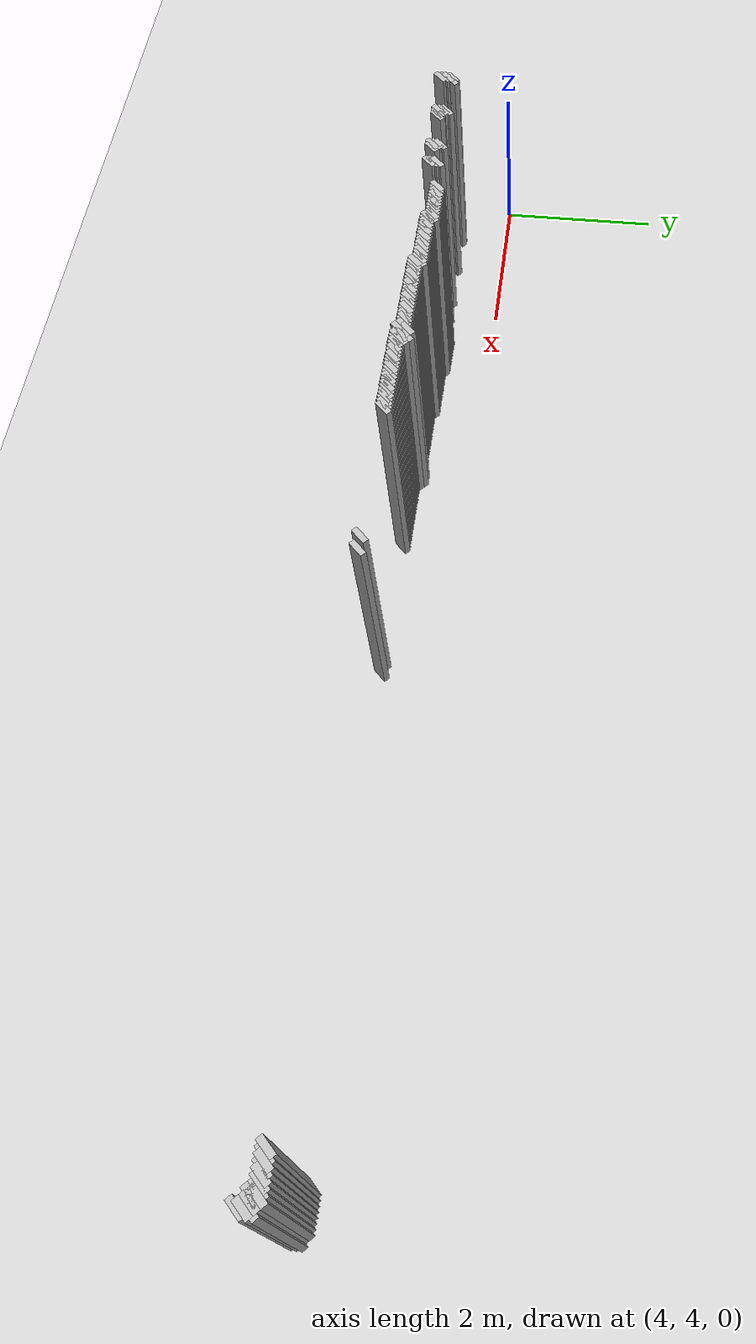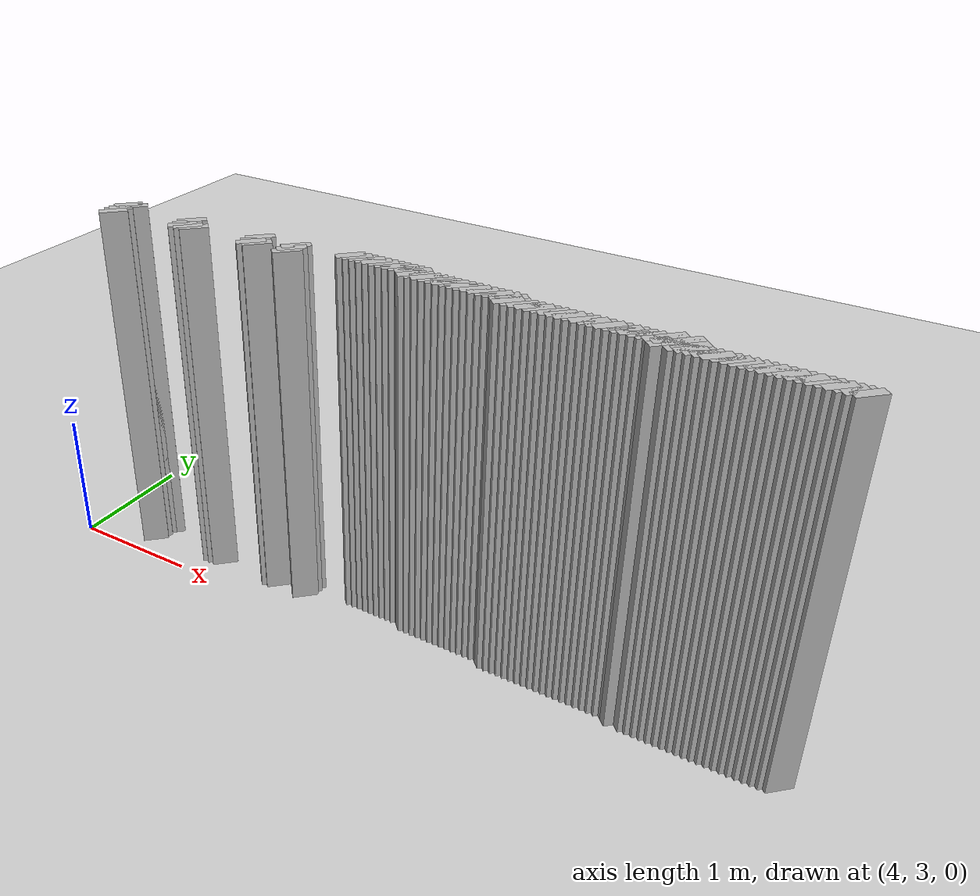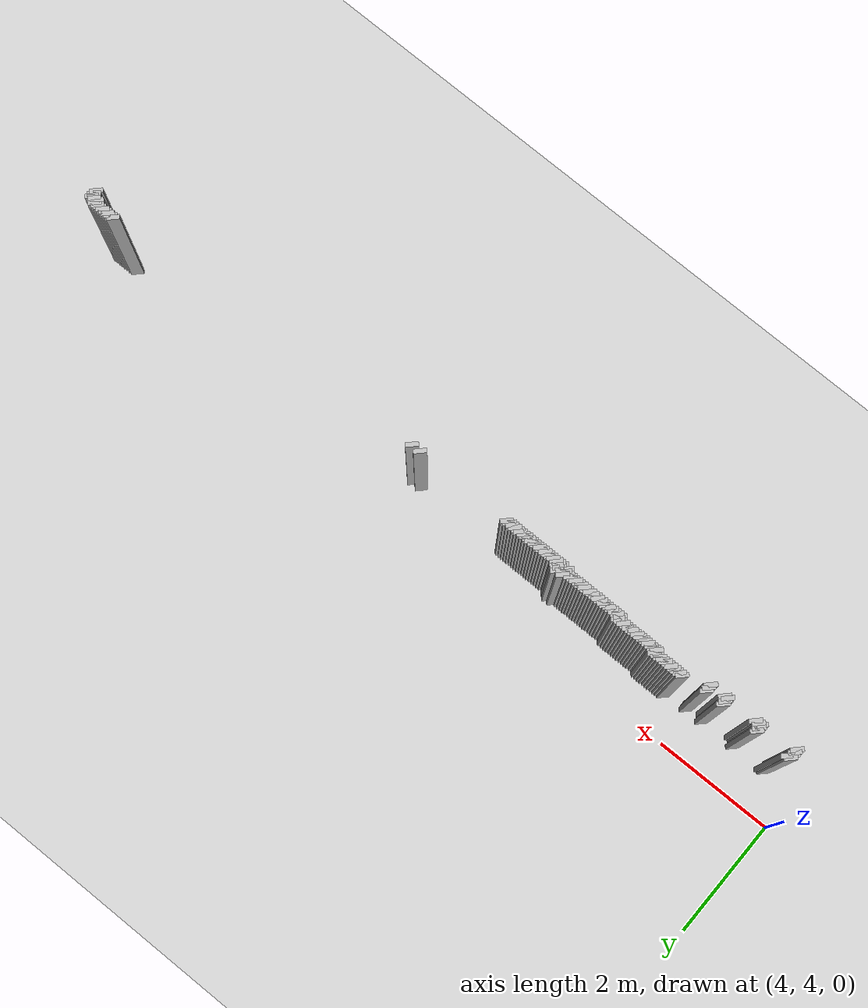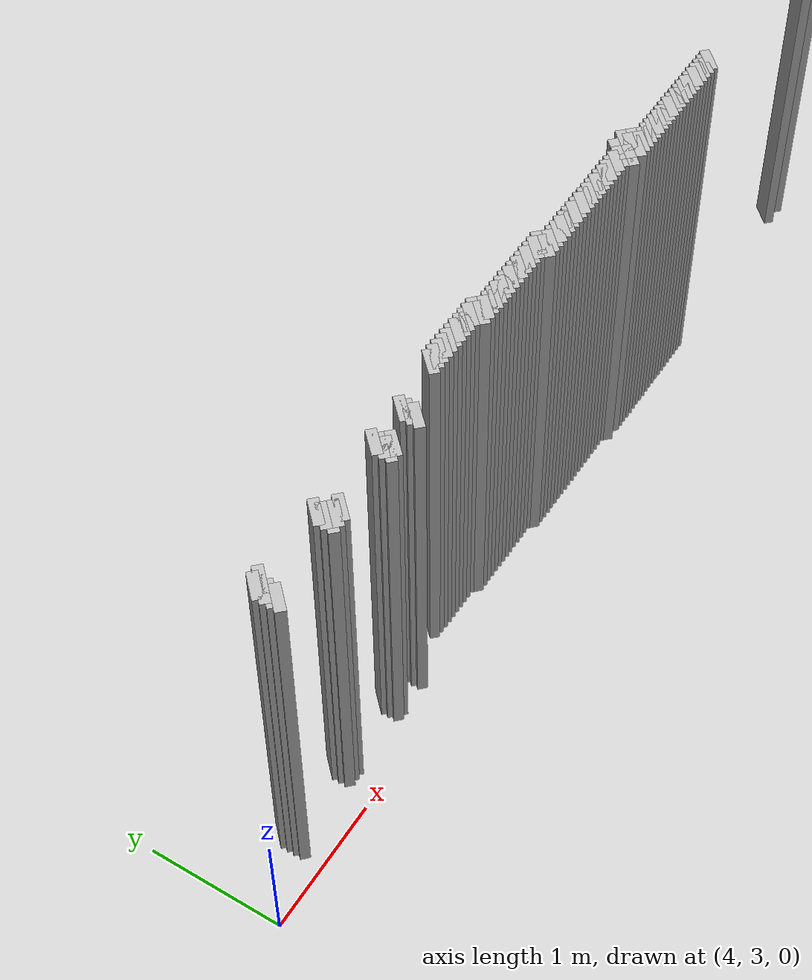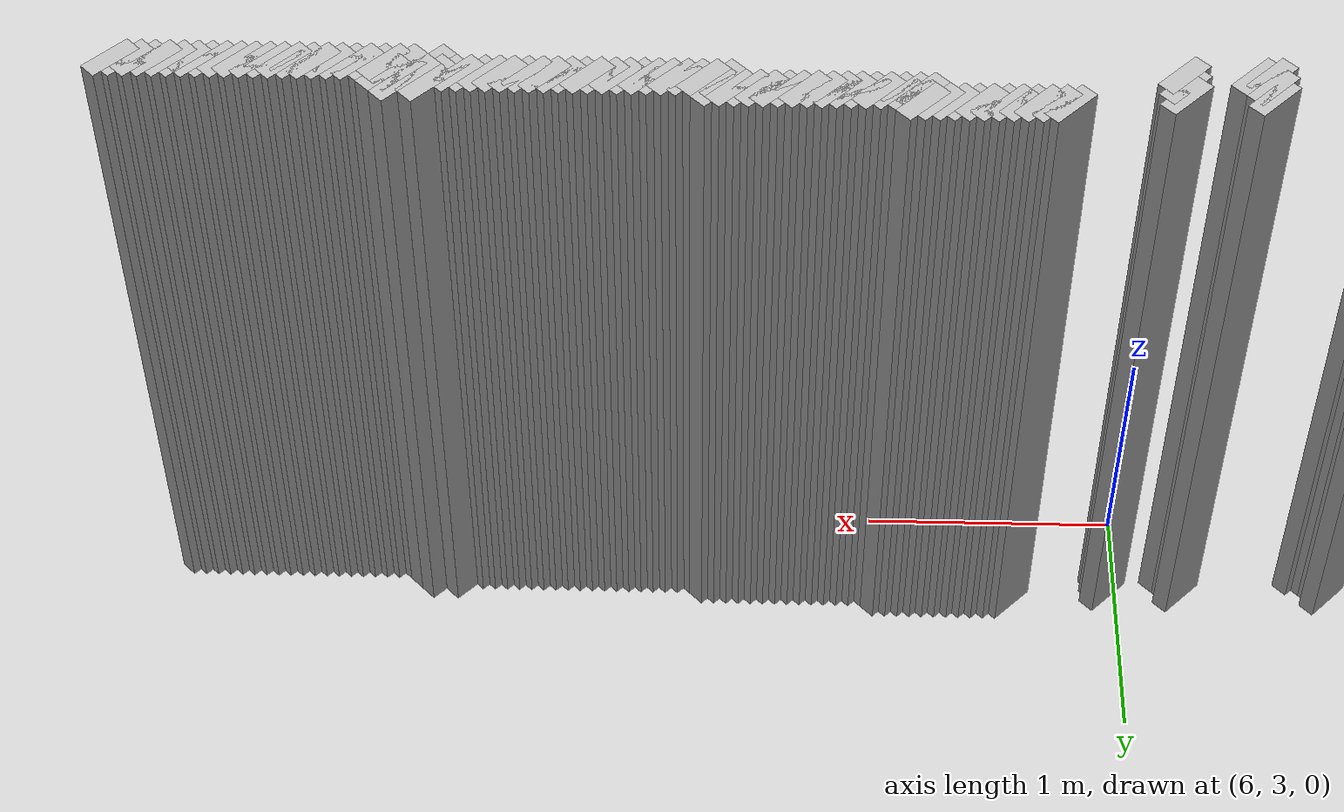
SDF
<sdf version="1.5">
 <world name="default">
  <include><uri>model://ground_plane</uri></include>
  <include><uri>model://sun</uri></include>
  <model name="grey_wall_3500">
   <static>1</static>
   <link name="link">
    <pose>6.45 3.4000000000000004  1.4 0 0 -0.7853981633974394</pose>
    <collision name="collision">
     <geometry><box><size>0.07071067811865513 .2  2.8</size></box></geometry>
    </collision>
    <visual name="visual">
     <cast_shadows>0</cast_shadows>
     <geometry><box><size>0.07071067811865513 .2  2.8</size></box></geometry>
    </visual>
   </link>
  </model>
  <model name="grey_wall_3501">
   <static>1</static>
   <link name="link">
    <pose>6.5 3.4000000000000004  1.4 0 0 -0.7853981633974394</pose>
    <collision name="collision">
     <geometry><box><size>0.07071067811865513 .2  2.8</size></box></geometry>
    </collision>
    <visual name="visual">
     <cast_shadows>0</cast_shadows>
     <geometry><box><size>0.07071067811865513 .2  2.8</size></box></geometry>
    </visual>
   </link>
  </model>
  <model name="grey_wall_3502">
   <static>1</static>
   <link name="link">
    <pose>6.550000000000001 3.4000000000000004  1.4 0 0 -0.7853981633974394</pose>
    <collision name="collision">
     <geometry><box><size>0.07071067811865513 .2  2.8</size></box></geometry>
    </collision>
    <visual name="visual">
     <cast_shadows>0</cast_shadows>
     <geometry><box><size>0.07071067811865513 .2  2.8</size></box></geometry>
    </visual>
   </link>
  </model>
  <model name="grey_wall_3503">
   <static>1</static>
   <link name="link">
    <pose>6.6000000000000005 3.4000000000000004  1.4 0 0 -0.7853981633974394</pose>
    <collision name="collision">
     <geometry><box><size>0.07071067811865513 .2  2.8</size></box></geometry>
    </collision>
    <visual name="visual">
     <cast_shadows>0</cast_shadows>
     <geometry><box><size>0.07071067811865513 .2  2.8</size></box></geometry>
    </visual>
   </link>
  </model>
  <model name="grey_wall_3504">
   <static>1</static>
   <link name="link">
    <pose>6.65 3.4000000000000004  1.4 0 0 -0.7853981633974394</pose>
    <collision name="collision">
     <geometry><box><size>0.07071067811865513 .2  2.8</size></box></geometry>
    </collision>
    <visual name="visual">
     <cast_shadows>0</cast_shadows>
     <geometry><box><size>0.07071067811865513 .2  2.8</size></box></geometry>
    </visual>
   </link>
  </model>
  <model name="grey_wall_3505">
   <static>1</static>
   <link name="link">
    <pose>6.7 3.4000000000000004  1.4 0 0 -0.7853981633974394</pose>
    <collision name="collision">
     <geometry><box><size>0.07071067811865513 .2  2.8</size></box></geometry>
    </collision>
    <visual name="visual">
     <cast_shadows>0</cast_shadows>
     <geometry><box><size>0.07071067811865513 .2  2.8</size></box></geometry>
    </visual>
   </link>
  </model>
  <model name="grey_wall_3506">
   <static>1</static>
   <link name="link">
    <pose>6.75 3.4000000000000004  1.4 0 0 -0.7853981633974394</pose>
    <collision name="collision">
     <geometry><box><size>0.07071067811865513 .2  2.8</size></box></geometry>
    </collision>
    <visual name="visual">
     <cast_shadows>0</cast_shadows>
     <geometry><box><size>0.07071067811865513 .2  2.8</size></box></geometry>
    </visual>
   </link>
  </model>
  <model name="grey_wall_3507">
   <static>1</static>
   <link name="link">
    <pose>6.800000000000001 3.4000000000000004  1.4 0 0 -0.7853981633974394</pose>
    <collision name="collision">
     <geometry><box><size>0.07071067811865513 .2  2.8</size></box></geometry>
    </collision>
    <visual name="visual">
     <cast_shadows>0</cast_shadows>
     <geometry><box><size>0.07071067811865513 .2  2.8</size></box></geometry>
    </visual>
   </link>
  </model>
  <model name="grey_wall_3508">
   <static>1</static>
   <link name="link">
    <pose>6.8500000000000005 3.4000000000000004  1.4 0 0 -0.7853981633974394</pose>
    <collision name="collision">
     <geometry><box><size>0.07071067811865513 .2  2.8</size></box></geometry>
    </collision>
    <visual name="visual">
     <cast_shadows>0</cast_shadows>
     <geometry><box><size>0.07071067811865513 .2  2.8</size></box></geometry>
    </visual>
   </link>
  </model>
  <model name="grey_wall_3509">
   <static>1</static>
   <link name="link">
    <pose>6.9 3.4000000000000004  1.4 0 0 -0.7853981633974394</pose>
    <collision name="collision">
     <geometry><box><size>0.07071067811865513 .2  2.8</size></box></geometry>
    </collision>
    <visual name="visual">
     <cast_shadows>0</cast_shadows>
     <geometry><box><size>0.07071067811865513 .2  2.8</size></box></geometry>
    </visual>
   </link>
  </model>
  <model name="grey_wall_3510">
   <static>1</static>
   <link name="link">
    <pose>6.95 3.4000000000000004  1.4 0 0 -0.7853981633974394</pose>
    <collision name="collision">
     <geometry><box><size>0.07071067811865513 .2  2.8</size></box></geometry>
    </collision>
    <visual name="visual">
     <cast_shadows>0</cast_shadows>
     <geometry><box><size>0.07071067811865513 .2  2.8</size></box></geometry>
    </visual>
   </link>
  </model>
  <model name="grey_wall_3511">
   <static>1</static>
   <link name="link">
    <pose>17.0 3.4000000000000004  1.4 0 0 -0.7853981633974749</pose>
    <collision name="collision">
     <geometry><box><size>0.07071067811865261 .2  2.8</size></box></geometry>
    </collision>
    <visual name="visual">
     <cast_shadows>0</cast_shadows>
     <geometry><box><size>0.07071067811865261 .2  2.8</size></box></geometry>
    </visual>
   </link>
  </model>
  <model name="grey_wall_3512">
   <static>1</static>
   <link name="link">
    <pose>17.05 3.4000000000000004  1.4 0 0 -0.7853981633974749</pose>
    <collision name="collision">
     <geometry><box><size>0.07071067811865261 .2  2.8</size></box></geometry>
    </collision>
    <visual name="visual">
     <cast_shadows>0</cast_shadows>
     <geometry><box><size>0.07071067811865261 .2  2.8</size></box></geometry>
    </visual>
   </link>
  </model>
  <model name="grey_wall_3513">
   <static>1</static>
   <link name="link">
    <pose>17.1 3.4000000000000004  1.4 0 0 -0.7853981633974749</pose>
    <collision name="collision">
     <geometry><box><size>0.07071067811865261 .2  2.8</size></box></geometry>
    </collision>
    <visual name="visual">
     <cast_shadows>0</cast_shadows>
     <geometry><box><size>0.07071067811865261 .2  2.8</size></box></geometry>
    </visual>
   </link>
  </model>
  <model name="grey_wall_3514">
   <static>1</static>
   <link name="link">
    <pose>17.150000000000002 3.4000000000000004  1.4 0 0 -0.7853981633974749</pose>
    <collision name="collision">
     <geometry><box><size>0.07071067811865261 .2  2.8</size></box></geometry>
    </collision>
    <visual name="visual">
     <cast_shadows>0</cast_shadows>
     <geometry><box><size>0.07071067811865261 .2  2.8</size></box></geometry>
    </visual>
   </link>
  </model>
  <model name="grey_wall_3515">
   <static>1</static>
   <link name="link">
    <pose>17.2 3.4000000000000004  1.4 0 0 -0.7853981633974749</pose>
    <collision name="collision">
     <geometry><box><size>0.07071067811865261 .2  2.8</size></box></geometry>
    </collision>
    <visual name="visual">
     <cast_shadows>0</cast_shadows>
     <geometry><box><size>0.07071067811865261 .2  2.8</size></box></geometry>
    </visual>
   </link>
  </model>
  <model name="grey_wall_3516">
   <static>1</static>
   <link name="link">
    <pose>17.25 3.4000000000000004  1.4 0 0 -0.7853981633974749</pose>
    <collision name="collision">
     <geometry><box><size>0.07071067811865261 .2  2.8</size></box></geometry>
    </collision>
    <visual name="visual">
     <cast_shadows>0</cast_shadows>
     <geometry><box><size>0.07071067811865261 .2  2.8</size></box></geometry>
    </visual>
   </link>
  </model>
  <model name="grey_wall_3517">
   <static>1</static>
   <link name="link">
    <pose>17.3 3.4000000000000004  1.4 0 0 -0.7853981633974749</pose>
    <collision name="collision">
     <geometry><box><size>0.07071067811865261 .2  2.8</size></box></geometry>
    </collision>
    <visual name="visual">
     <cast_shadows>0</cast_shadows>
     <geometry><box><size>0.07071067811865261 .2  2.8</size></box></geometry>
    </visual>
   </link>
  </model>
  <model name="grey_wall_3518">
   <static>1</static>
   <link name="link">
    <pose>17.35 3.4000000000000004  1.4 0 0 -0.7853981633974749</pose>
    <collision name="collision">
     <geometry><box><size>0.07071067811865261 .2  2.8</size></box></geometry>
    </collision>
    <visual name="visual">
     <cast_shadows>0</cast_shadows>
     <geometry><box><size>0.07071067811865261 .2  2.8</size></box></geometry>
    </visual>
   </link>
  </model>
  <model name="grey_wall_3519">
   <static>1</static>
   <link name="link">
    <pose>4.55 3.35  1.4 0 0 -0.7853981633974394</pose>
    <collision name="collision">
     <geometry><box><size>0.07071067811865513 .2  2.8</size></box></geometry>
    </collision>
    <visual name="visual">
     <cast_shadows>0</cast_shadows>
     <geometry><box><size>0.07071067811865513 .2  2.8</size></box></geometry>
    </visual>
   </link>
  </model>
  <model name="grey_wall_3520">
   <static>1</static>
   <link name="link">
    <pose>4.6000000000000005 3.35  1.4 0 0 -0.7853981633974394</pose>
    <collision name="collision">
     <geometry><box><size>0.07071067811865513 .2  2.8</size></box></geometry>
    </collision>
    <visual name="visual">
     <cast_shadows>0</cast_shadows>
     <geometry><box><size>0.07071067811865513 .2  2.8</size></box></geometry>
    </visual>
   </link>
  </model>
  <model name="grey_wall_3521">
   <static>1</static>
   <link name="link">
    <pose>5.15 3.35  1.4 0 0 -0.7853981633974394</pose>
    <collision name="collision">
     <geometry><box><size>0.07071067811865513 .2  2.8</size></box></geometry>
    </collision>
    <visual name="visual">
     <cast_shadows>0</cast_shadows>
     <geometry><box><size>0.07071067811865513 .2  2.8</size></box></geometry>
    </visual>
   </link>
  </model>
  <model name="grey_wall_3522">
   <static>1</static>
   <link name="link">
    <pose>5.75 3.35  1.4 0 0 -0.7853981633974394</pose>
    <collision name="collision">
     <geometry><box><size>0.07071067811865513 .2  2.8</size></box></geometry>
    </collision>
    <visual name="visual">
     <cast_shadows>0</cast_shadows>
     <geometry><box><size>0.07071067811865513 .2  2.8</size></box></geometry>
    </visual>
   </link>
  </model>
  <model name="grey_wall_3523">
   <static>1</static>
   <link name="link">
    <pose>6.050000000000001 3.35  1.4 0 0 -0.7853981633974394</pose>
    <collision name="collision">
     <geometry><box><size>0.07071067811865513 .2  2.8</size></box></geometry>
    </collision>
    <visual name="visual">
     <cast_shadows>0</cast_shadows>
     <geometry><box><size>0.07071067811865513 .2  2.8</size></box></geometry>
    </visual>
   </link>
  </model>
  <model name="grey_wall_3524">
   <static>1</static>
   <link name="link">
    <pose>6.95 3.35  1.4 0 0 -0.7853981633974394</pose>
    <collision name="collision">
     <geometry><box><size>0.07071067811865513 .2  2.8</size></box></geometry>
    </collision>
    <visual name="visual">
     <cast_shadows>0</cast_shadows>
     <geometry><box><size>0.07071067811865513 .2  2.8</size></box></geometry>
    </visual>
   </link>
  </model>
  <model name="grey_wall_3525">
   <static>1</static>
   <link name="link">
    <pose>7.0 3.35  1.4 0 0 -0.7853981633974394</pose>
    <collision name="collision">
     <geometry><box><size>0.07071067811865513 .2  2.8</size></box></geometry>
    </collision>
    <visual name="visual">
     <cast_shadows>0</cast_shadows>
     <geometry><box><size>0.07071067811865513 .2  2.8</size></box></geometry>
    </visual>
   </link>
  </model>
  <model name="grey_wall_3526">
   <static>1</static>
   <link name="link">
    <pose>7.050000000000001 3.35  1.4 0 0 -0.7853981633974394</pose>
    <collision name="collision">
     <geometry><box><size>0.07071067811865513 .2  2.8</size></box></geometry>
    </collision>
    <visual name="visual">
     <cast_shadows>0</cast_shadows>
     <geometry><box><size>0.07071067811865513 .2  2.8</size></box></geometry>
    </visual>
   </link>
  </model>
  <model name="grey_wall_3527">
   <static>1</static>
   <link name="link">
    <pose>7.1000000000000005 3.35  1.4 0 0 -0.7853981633974394</pose>
    <collision name="collision">
     <geometry><box><size>0.07071067811865513 .2  2.8</size></box></geometry>
    </collision>
    <visual name="visual">
     <cast_shadows>0</cast_shadows>
     <geometry><box><size>0.07071067811865513 .2  2.8</size></box></geometry>
    </visual>
   </link>
  </model>
  <model name="grey_wall_3528">
   <static>1</static>
   <link name="link">
    <pose>7.15 3.35  1.4 0 0 -0.7853981633974394</pose>
    <collision name="collision">
     <geometry><box><size>0.07071067811865513 .2  2.8</size></box></geometry>
    </collision>
    <visual name="visual">
     <cast_shadows>0</cast_shadows>
     <geometry><box><size>0.07071067811865513 .2  2.8</size></box></geometry>
    </visual>
   </link>
  </model>
  <model name="grey_wall_3529">
   <static>1</static>
   <link name="link">
    <pose>7.2 3.35  1.4 0 0 -0.7853981633974394</pose>
    <collision name="collision">
     <geometry><box><size>0.07071067811865513 .2  2.8</size></box></geometry>
    </collision>
    <visual name="visual">
     <cast_shadows>0</cast_shadows>
     <geometry><box><size>0.07071067811865513 .2  2.8</size></box></geometry>
    </visual>
   </link>
  </model>
  <model name="grey_wall_3530">
   <static>1</static>
   <link name="link">
    <pose>7.25 3.35  1.4 0 0 -0.7853981633974394</pose>
    <collision name="collision">
     <geometry><box><size>0.07071067811865513 .2  2.8</size></box></geometry>
    </collision>
    <visual name="visual">
     <cast_shadows>0</cast_shadows>
     <geometry><box><size>0.07071067811865513 .2  2.8</size></box></geometry>
    </visual>
   </link>
  </model>
  <model name="grey_wall_3531">
   <static>1</static>
   <link name="link">
    <pose>7.300000000000001 3.35  1.4 0 0 -0.7853981633974394</pose>
    <collision name="collision">
     <geometry><box><size>0.07071067811865513 .2  2.8</size></box></geometry>
    </collision>
    <visual name="visual">
     <cast_shadows>0</cast_shadows>
     <geometry><box><size>0.07071067811865513 .2  2.8</size></box></geometry>
    </visual>
   </link>
  </model>
  <model name="grey_wall_3532">
   <static>1</static>
   <link name="link">
    <pose>7.3500000000000005 3.35  1.4 0 0 -0.7853981633974394</pose>
    <collision name="collision">
     <geometry><box><size>0.07071067811865513 .2  2.8</size></box></geometry>
    </collision>
    <visual name="visual">
     <cast_shadows>0</cast_shadows>
     <geometry><box><size>0.07071067811865513 .2  2.8</size></box></geometry>
    </visual>
   </link>
  </model>
  <model name="grey_wall_3533">
   <static>1</static>
   <link name="link">
    <pose>7.4 3.35  1.4 0 0 -0.7853981633974394</pose>
    <collision name="collision">
     <geometry><box><size>0.07071067811865513 .2  2.8</size></box></geometry>
    </collision>
    <visual name="visual">
     <cast_shadows>0</cast_shadows>
     <geometry><box><size>0.07071067811865513 .2  2.8</size></box></geometry>
    </visual>
   </link>
  </model>
  <model name="grey_wall_3534">
   <static>1</static>
   <link name="link">
    <pose>7.45 3.35  1.4 0 0 -0.7853981633974394</pose>
    <collision name="collision">
     <geometry><box><size>0.07071067811865513 .2  2.8</size></box></geometry>
    </collision>
    <visual name="visual">
     <cast_shadows>0</cast_shadows>
     <geometry><box><size>0.07071067811865513 .2  2.8</size></box></geometry>
    </visual>
   </link>
  </model>
  <model name="grey_wall_3535">
   <static>1</static>
   <link name="link">
    <pose>7.5 3.35  1.4 0 0 -0.7853981633974394</pose>
    <collision name="collision">
     <geometry><box><size>0.07071067811865513 .2  2.8</size></box></geometry>
    </collision>
    <visual name="visual">
     <cast_shadows>0</cast_shadows>
     <geometry><box><size>0.07071067811865513 .2  2.8</size></box></geometry>
    </visual>
   </link>
  </model>
  <model name="grey_wall_3536">
   <static>1</static>
   <link name="link">
    <pose>7.550000000000001 3.35  1.4 0 0 -0.7853981633974394</pose>
    <collision name="collision">
     <geometry><box><size>0.07071067811865513 .2  2.8</size></box></geometry>
    </collision>
    <visual name="visual">
     <cast_shadows>0</cast_shadows>
     <geometry><box><size>0.07071067811865513 .2  2.8</size></box></geometry>
    </visual>
   </link>
  </model>
  <model name="grey_wall_3537">
   <static>1</static>
   <link name="link">
    <pose>7.6000000000000005 3.35  1.4 0 0 -0.7853981633974394</pose>
    <collision name="collision">
     <geometry><box><size>0.07071067811865513 .2  2.8</size></box></geometry>
    </collision>
    <visual name="visual">
     <cast_shadows>0</cast_shadows>
     <geometry><box><size>0.07071067811865513 .2  2.8</size></box></geometry>
    </visual>
   </link>
  </model>
  <model name="grey_wall_3538">
   <static>1</static>
   <link name="link">
    <pose>7.65 3.35  1.4 0 0 -0.7853981633974394</pose>
    <collision name="collision">
     <geometry><box><size>0.07071067811865513 .2  2.8</size></box></geometry>
    </collision>
    <visual name="visual">
     <cast_shadows>0</cast_shadows>
     <geometry><box><size>0.07071067811865513 .2  2.8</size></box></geometry>
    </visual>
   </link>
  </model>
  <model name="grey_wall_3539">
   <static>1</static>
   <link name="link">
    <pose>8.65 3.35  1.4 0 0 -0.7853981633974394</pose>
    <collision name="collision">
     <geometry><box><size>0.07071067811865513 .2  2.8</size></box></geometry>
    </collision>
    <visual name="visual">
     <cast_shadows>0</cast_shadows>
     <geometry><box><size>0.07071067811865513 .2  2.8</size></box></geometry>
    </visual>
   </link>
  </model>
  <model name="grey_wall_3540">
   <static>1</static>
   <link name="link">
    <pose>8.75 3.35  1.4 0 0 -0.7853981633974394</pose>
    <collision name="collision">
     <geometry><box><size>0.07071067811865513 .2  2.8</size></box></geometry>
    </collision>
    <visual name="visual">
     <cast_shadows>0</cast_shadows>
     <geometry><box><size>0.07071067811865513 .2  2.8</size></box></geometry>
    </visual>
   </link>
  </model>
  <model name="grey_wall_3541">
   <static>1</static>
   <link name="link">
    <pose>17.35 3.35  1.4 0 0 -0.7853981633974749</pose>
    <collision name="collision">
     <geometry><box><size>0.07071067811865261 .2  2.8</size></box></geometry>
    </collision>
    <visual name="visual">
     <cast_shadows>0</cast_shadows>
     <geometry><box><size>0.07071067811865261 .2  2.8</size></box></geometry>
    </visual>
   </link>
  </model>
  <model name="grey_wall_3542">
   <static>1</static>
   <link name="link">
    <pose>17.400000000000002 3.35  1.4 0 0 -0.7853981633974749</pose>
    <collision name="collision">
     <geometry><box><size>0.07071067811865261 .2  2.8</size></box></geometry>
    </collision>
    <visual name="visual">
     <cast_shadows>0</cast_shadows>
     <geometry><box><size>0.07071067811865261 .2  2.8</size></box></geometry>
    </visual>
   </link>
  </model>
  <model name="grey_wall_3543">
   <static>1</static>
   <link name="link">
    <pose>17.45 3.35  1.4 0 0 -0.7853981633974749</pose>
    <collision name="collision">
     <geometry><box><size>0.07071067811865261 .2  2.8</size></box></geometry>
    </collision>
    <visual name="visual">
     <cast_shadows>0</cast_shadows>
     <geometry><box><size>0.07071067811865261 .2  2.8</size></box></geometry>
    </visual>
   </link>
  </model>
  <model name="grey_wall_3544">
   <static>1</static>
   <link name="link">
    <pose>4.55 3.3000000000000003  1.4 0 0 -0.7853981633974394</pose>
    <collision name="collision">
     <geometry><box><size>0.07071067811865513 .2  2.8</size></box></geometry>
    </collision>
    <visual name="visual">
     <cast_shadows>0</cast_shadows>
     <geometry><box><size>0.07071067811865513 .2  2.8</size></box></geometry>
    </visual>
   </link>
  </model>
  <model name="grey_wall_3545">
   <static>1</static>
   <link name="link">
    <pose>5.15 3.3000000000000003  1.4 0 0 -0.7853981633974394</pose>
    <collision name="collision">
     <geometry><box><size>0.07071067811865513 .2  2.8</size></box></geometry>
    </collision>
    <visual name="visual">
     <cast_shadows>0</cast_shadows>
     <geometry><box><size>0.07071067811865513 .2  2.8</size></box></geometry>
    </visual>
   </link>
  </model>
  <model name="grey_wall_3546">
   <static>1</static>
   <link name="link">
    <pose>5.75 3.3000000000000003  1.4 0 0 -0.7853981633974394</pose>
    <collision name="collision">
     <geometry><box><size>0.07071067811865513 .2  2.8</size></box></geometry>
    </collision>
    <visual name="visual">
     <cast_shadows>0</cast_shadows>
     <geometry><box><size>0.07071067811865513 .2  2.8</size></box></geometry>
    </visual>
   </link>
  </model>
  <model name="grey_wall_3547">
   <static>1</static>
   <link name="link">
    <pose>6.050000000000001 3.3000000000000003  1.4 0 0 -0.7853981633974394</pose>
    <collision name="collision">
     <geometry><box><size>0.07071067811865513 .2  2.8</size></box></geometry>
    </collision>
    <visual name="visual">
     <cast_shadows>0</cast_shadows>
     <geometry><box><size>0.07071067811865513 .2  2.8</size></box></geometry>
    </visual>
   </link>
  </model>
  <model name="grey_wall_3548">
   <static>1</static>
   <link name="link">
    <pose>7.65 3.3000000000000003  1.4 0 0 -0.7853981633974394</pose>
    <collision name="collision">
     <geometry><box><size>0.07071067811865513 .2  2.8</size></box></geometry>
    </collision>
    <visual name="visual">
     <cast_shadows>0</cast_shadows>
     <geometry><box><size>0.07071067811865513 .2  2.8</size></box></geometry>
    </visual>
   </link>
  </model>
  <model name="grey_wall_3549">
   <static>1</static>
   <link name="link">
    <pose>7.7 3.3000000000000003  1.4 0 0 -0.7853981633974394</pose>
    <collision name="collision">
     <geometry><box><size>0.07071067811865513 .2  2.8</size></box></geometry>
    </collision>
    <visual name="visual">
     <cast_shadows>0</cast_shadows>
     <geometry><box><size>0.07071067811865513 .2  2.8</size></box></geometry>
    </visual>
   </link>
  </model>
  <model name="grey_wall_3550">
   <static>1</static>
   <link name="link">
    <pose>7.75 3.3000000000000003  1.4 0 0 -0.7853981633974394</pose>
    <collision name="collision">
     <geometry><box><size>0.07071067811865513 .2  2.8</size></box></geometry>
    </collision>
    <visual name="visual">
     <cast_shadows>0</cast_shadows>
     <geometry><box><size>0.07071067811865513 .2  2.8</size></box></geometry>
    </visual>
   </link>
  </model>
  <model name="grey_wall_3551">
   <static>1</static>
   <link name="link">
    <pose>7.800000000000001 3.3000000000000003  1.4 0 0 -0.7853981633974394</pose>
    <collision name="collision">
     <geometry><box><size>0.07071067811865513 .2  2.8</size></box></geometry>
    </collision>
    <visual name="visual">
     <cast_shadows>0</cast_shadows>
     <geometry><box><size>0.07071067811865513 .2  2.8</size></box></geometry>
    </visual>
   </link>
  </model>
  <model name="grey_wall_3552">
   <static>1</static>
   <link name="link">
    <pose>7.8500000000000005 3.3000000000000003  1.4 0 0 -0.7853981633974394</pose>
    <collision name="collision">
     <geometry><box><size>0.07071067811865513 .2  2.8</size></box></geometry>
    </collision>
    <visual name="visual">
     <cast_shadows>0</cast_shadows>
     <geometry><box><size>0.07071067811865513 .2  2.8</size></box></geometry>
    </visual>
   </link>
  </model>
  <model name="grey_wall_3553">
   <static>1</static>
   <link name="link">
    <pose>7.9 3.3000000000000003  1.4 0 0 -0.7853981633974394</pose>
    <collision name="collision">
     <geometry><box><size>0.07071067811865513 .2  2.8</size></box></geometry>
    </collision>
    <visual name="visual">
     <cast_shadows>0</cast_shadows>
     <geometry><box><size>0.07071067811865513 .2  2.8</size></box></geometry>
    </visual>
   </link>
  </model>
  <model name="grey_wall_3554">
   <static>1</static>
   <link name="link">
    <pose>7.95 3.3000000000000003  1.4 0 0 -0.7853981633974394</pose>
    <collision name="collision">
     <geometry><box><size>0.07071067811865513 .2  2.8</size></box></geometry>
    </collision>
    <visual name="visual">
     <cast_shadows>0</cast_shadows>
     <geometry><box><size>0.07071067811865513 .2  2.8</size></box></geometry>
    </visual>
   </link>
  </model>
  <model name="grey_wall_3555">
   <static>1</static>
   <link name="link">
    <pose>8.0 3.3000000000000003  1.4 0 0 -0.7853981633974394</pose>
    <collision name="collision">
     <geometry><box><size>0.07071067811865513 .2  2.8</size></box></geometry>
    </collision>
    <visual name="visual">
     <cast_shadows>0</cast_shadows>
     <geometry><box><size>0.07071067811865513 .2  2.8</size></box></geometry>
    </visual>
   </link>
  </model>
  <model name="grey_wall_3556">
   <static>1</static>
   <link name="link">
    <pose>8.05 3.3000000000000003  1.4 0 0 -0.7853981633974394</pose>
    <collision name="collision">
     <geometry><box><size>0.07071067811865513 .2  2.8</size></box></geometry>
    </collision>
    <visual name="visual">
     <cast_shadows>0</cast_shadows>
     <geometry><box><size>0.07071067811865513 .2  2.8</size></box></geometry>
    </visual>
   </link>
  </model>
  <model name="grey_wall_3557">
   <static>1</static>
   <link name="link">
    <pose>8.1 3.3000000000000003  1.4 0 0 -0.7853981633974394</pose>
    <collision name="collision">
     <geometry><box><size>0.07071067811865513 .2  2.8</size></box></geometry>
    </collision>
    <visual name="visual">
     <cast_shadows>0</cast_shadows>
     <geometry><box><size>0.07071067811865513 .2  2.8</size></box></geometry>
    </visual>
   </link>
  </model>
  <model name="grey_wall_3558">
   <static>1</static>
   <link name="link">
    <pose>8.15 3.3000000000000003  1.4 0 0 -0.7853981633974394</pose>
    <collision name="collision">
     <geometry><box><size>0.07071067811865513 .2  2.8</size></box></geometry>
    </collision>
    <visual name="visual">
     <cast_shadows>0</cast_shadows>
     <geometry><box><size>0.07071067811865513 .2  2.8</size></box></geometry>
    </visual>
   </link>
  </model>
  <model name="grey_wall_3559">
   <static>1</static>
   <link name="link">
    <pose>8.200000000000001 3.3000000000000003  1.4 0 0 -0.7853981633974394</pose>
    <collision name="collision">
     <geometry><box><size>0.07071067811865513 .2  2.8</size></box></geometry>
    </collision>
    <visual name="visual">
     <cast_shadows>0</cast_shadows>
     <geometry><box><size>0.07071067811865513 .2  2.8</size></box></geometry>
    </visual>
   </link>
  </model>
  <model name="grey_wall_3560">
   <static>1</static>
   <link name="link">
    <pose>8.25 3.3000000000000003  1.4 0 0 -0.7853981633974394</pose>
    <collision name="collision">
     <geometry><box><size>0.07071067811865513 .2  2.8</size></box></geometry>
    </collision>
    <visual name="visual">
     <cast_shadows>0</cast_shadows>
     <geometry><box><size>0.07071067811865513 .2  2.8</size></box></geometry>
    </visual>
   </link>
  </model>
  <model name="grey_wall_3561">
   <static>1</static>
   <link name="link">
    <pose>8.3 3.3000000000000003  1.4 0 0 -0.7853981633974394</pose>
    <collision name="collision">
     <geometry><box><size>0.07071067811865513 .2  2.8</size></box></geometry>
    </collision>
    <visual name="visual">
     <cast_shadows>0</cast_shadows>
     <geometry><box><size>0.07071067811865513 .2  2.8</size></box></geometry>
    </visual>
   </link>
  </model>
  <model name="grey_wall_3562">
   <static>1</static>
   <link name="link">
    <pose>8.35 3.3000000000000003  1.4 0 0 -0.7853981633974394</pose>
    <collision name="collision">
     <geometry><box><size>0.07071067811865513 .2  2.8</size></box></geometry>
    </collision>
    <visual name="visual">
     <cast_shadows>0</cast_shadows>
     <geometry><box><size>0.07071067811865513 .2  2.8</size></box></geometry>
    </visual>
   </link>
  </model>
  <model name="grey_wall_3563">
   <static>1</static>
   <link name="link">
    <pose>8.4 3.3000000000000003  1.4 0 0 -0.7853981633974394</pose>
    <collision name="collision">
     <geometry><box><size>0.07071067811865513 .2  2.8</size></box></geometry>
    </collision>
    <visual name="visual">
     <cast_shadows>0</cast_shadows>
     <geometry><box><size>0.07071067811865513 .2  2.8</size></box></geometry>
    </visual>
   </link>
  </model>
  <model name="grey_wall_3564">
   <static>1</static>
   <link name="link">
    <pose>8.450000000000001 3.3000000000000003  1.4 0 0 -0.7853981633974394</pose>
    <collision name="collision">
     <geometry><box><size>0.07071067811865513 .2  2.8</size></box></geometry>
    </collision>
    <visual name="visual">
     <cast_shadows>0</cast_shadows>
     <geometry><box><size>0.07071067811865513 .2  2.8</size></box></geometry>
    </visual>
   </link>
  </model>
  <model name="grey_wall_3565">
   <static>1</static>
   <link name="link">
    <pose>8.5 3.3000000000000003  1.4 0 0 -0.7853981633974394</pose>
    <collision name="collision">
     <geometry><box><size>0.07071067811865513 .2  2.8</size></box></geometry>
    </collision>
    <visual name="visual">
     <cast_shadows>0</cast_shadows>
     <geometry><box><size>0.07071067811865513 .2  2.8</size></box></geometry>
    </visual>
   </link>
  </model>
  <model name="grey_wall_3566">
   <static>1</static>
   <link name="link">
    <pose>8.55 3.3000000000000003  1.4 0 0 -0.7853981633974394</pose>
    <collision name="collision">
     <geometry><box><size>0.07071067811865513 .2  2.8</size></box></geometry>
    </collision>
    <visual name="visual">
     <cast_shadows>0</cast_shadows>
     <geometry><box><size>0.07071067811865513 .2  2.8</size></box></geometry>
    </visual>
   </link>
  </model>
  <model name="grey_wall_3567">
   <static>1</static>
   <link name="link">
    <pose>8.6 3.3000000000000003  1.4 0 0 -0.7853981633974394</pose>
    <collision name="collision">
     <geometry><box><size>0.07071067811865513 .2  2.8</size></box></geometry>
    </collision>
    <visual name="visual">
     <cast_shadows>0</cast_shadows>
     <geometry><box><size>0.07071067811865513 .2  2.8</size></box></geometry>
    </visual>
   </link>
  </model>
  <model name="grey_wall_3568">
   <static>1</static>
   <link name="link">
    <pose>8.65 3.3000000000000003  1.4 0 0 -0.7853981633974394</pose>
    <collision name="collision">
     <geometry><box><size>0.07071067811865513 .2  2.8</size></box></geometry>
    </collision>
    <visual name="visual">
     <cast_shadows>0</cast_shadows>
     <geometry><box><size>0.07071067811865513 .2  2.8</size></box></geometry>
    </visual>
   </link>
  </model>
  <model name="grey_wall_3569">
   <static>1</static>
   <link name="link">
    <pose>8.700000000000001 3.3000000000000003  1.4 0 0 -0.7853981633974394</pose>
    <collision name="collision">
     <geometry><box><size>0.07071067811865513 .2  2.8</size></box></geometry>
    </collision>
    <visual name="visual">
     <cast_shadows>0</cast_shadows>
     <geometry><box><size>0.07071067811865513 .2  2.8</size></box></geometry>
    </visual>
   </link>
  </model>
  <model name="grey_wall_3570">
   <static>1</static>
   <link name="link">
    <pose>8.75 3.3000000000000003  1.4 0 0 -0.7853981633974394</pose>
    <collision name="collision">
     <geometry><box><size>0.07071067811865513 .2  2.8</size></box></geometry>
    </collision>
    <visual name="visual">
     <cast_shadows>0</cast_shadows>
     <geometry><box><size>0.07071067811865513 .2  2.8</size></box></geometry>
    </visual>
   </link>
  </model>
  <model name="grey_wall_3571">
   <static>1</static>
   <link name="link">
    <pose>8.8 3.3000000000000003  1.4 0 0 -0.7853981633974394</pose>
    <collision name="collision">
     <geometry><box><size>0.07071067811865513 .2  2.8</size></box></geometry>
    </collision>
    <visual name="visual">
     <cast_shadows>0</cast_shadows>
     <geometry><box><size>0.07071067811865513 .2  2.8</size></box></geometry>
    </visual>
   </link>
  </model>
  <model name="grey_wall_3572">
   <static>1</static>
   <link name="link">
    <pose>17.45 3.3000000000000003  1.4 0 0 -0.7853981633974749</pose>
    <collision name="collision">
     <geometry><box><size>0.07071067811865261 .2  2.8</size></box></geometry>
    </collision>
    <visual name="visual">
     <cast_shadows>0</cast_shadows>
     <geometry><box><size>0.07071067811865261 .2  2.8</size></box></geometry>
    </visual>
   </link>
  </model>
  <model name="grey_wall_3573">
   <static>1</static>
   <link name="link">
    <pose>4.55 3.25  1.4 0 0 -0.7853981633974394</pose>
    <collision name="collision">
     <geometry><box><size>0.07071067811865513 .2  2.8</size></box></geometry>
    </collision>
    <visual name="visual">
     <cast_shadows>0</cast_shadows>
     <geometry><box><size>0.07071067811865513 .2  2.8</size></box></geometry>
    </visual>
   </link>
  </model>
  <model name="grey_wall_3574">
   <static>1</static>
   <link name="link">
    <pose>5.15 3.25  1.4 0 0 -0.7853981633974394</pose>
    <collision name="collision">
     <geometry><box><size>0.07071067811865513 .2  2.8</size></box></geometry>
    </collision>
    <visual name="visual">
     <cast_shadows>0</cast_shadows>
     <geometry><box><size>0.07071067811865513 .2  2.8</size></box></geometry>
    </visual>
   </link>
  </model>
  <model name="grey_wall_3575">
   <static>1</static>
   <link name="link">
    <pose>5.2 3.25  1.4 0 0 -0.7853981633974394</pose>
    <collision name="collision">
     <geometry><box><size>0.07071067811865513 .2  2.8</size></box></geometry>
    </collision>
    <visual name="visual">
     <cast_shadows>0</cast_shadows>
     <geometry><box><size>0.07071067811865513 .2  2.8</size></box></geometry>
    </visual>
   </link>
  </model>
  <model name="grey_wall_3576">
   <static>1</static>
   <link name="link">
    <pose>5.25 3.25  1.4 0 0 -0.7853981633974394</pose>
    <collision name="collision">
     <geometry><box><size>0.07071067811865513 .2  2.8</size></box></geometry>
    </collision>
    <visual name="visual">
     <cast_shadows>0</cast_shadows>
     <geometry><box><size>0.07071067811865513 .2  2.8</size></box></geometry>
    </visual>
   </link>
  </model>
  <model name="grey_wall_3577">
   <static>1</static>
   <link name="link">
    <pose>5.75 3.25  1.4 0 0 -0.7853981633974394</pose>
    <collision name="collision">
     <geometry><box><size>0.07071067811865513 .2  2.8</size></box></geometry>
    </collision>
    <visual name="visual">
     <cast_shadows>0</cast_shadows>
     <geometry><box><size>0.07071067811865513 .2  2.8</size></box></geometry>
    </visual>
   </link>
  </model>
  <model name="grey_wall_3578">
   <static>1</static>
   <link name="link">
    <pose>5.800000000000001 3.25  1.4 0 0 -0.7853981633974394</pose>
    <collision name="collision">
     <geometry><box><size>0.07071067811865513 .2  2.8</size></box></geometry>
    </collision>
    <visual name="visual">
     <cast_shadows>0</cast_shadows>
     <geometry><box><size>0.07071067811865513 .2  2.8</size></box></geometry>
    </visual>
   </link>
  </model>
  <model name="grey_wall_3579">
   <static>1</static>
   <link name="link">
    <pose>6.050000000000001 3.25  1.4 0 0 -0.7853981633974394</pose>
    <collision name="collision">
     <geometry><box><size>0.07071067811865513 .2  2.8</size></box></geometry>
    </collision>
    <visual name="visual">
     <cast_shadows>0</cast_shadows>
     <geometry><box><size>0.07071067811865513 .2  2.8</size></box></geometry>
    </visual>
   </link>
  </model>
  <model name="grey_wall_3580">
   <static>1</static>
   <link name="link">
    <pose>8.65 3.25  1.4 0 0 -0.7853981633974394</pose>
    <collision name="collision">
     <geometry><box><size>0.07071067811865513 .2  2.8</size></box></geometry>
    </collision>
    <visual name="visual">
     <cast_shadows>0</cast_shadows>
     <geometry><box><size>0.07071067811865513 .2  2.8</size></box></geometry>
    </visual>
   </link>
  </model>
  <model name="grey_wall_3581">
   <static>1</static>
   <link name="link">
    <pose>8.75 3.25  1.4 0 0 -0.7853981633974394</pose>
    <collision name="collision">
     <geometry><box><size>0.07071067811865513 .2  2.8</size></box></geometry>
    </collision>
    <visual name="visual">
     <cast_shadows>0</cast_shadows>
     <geometry><box><size>0.07071067811865513 .2  2.8</size></box></geometry>
    </visual>
   </link>
  </model>
  <model name="grey_wall_3582">
   <static>1</static>
   <link name="link">
    <pose>8.8 3.25  1.4 0 0 -0.7853981633974394</pose>
    <collision name="collision">
     <geometry><box><size>0.07071067811865513 .2  2.8</size></box></geometry>
    </collision>
    <visual name="visual">
     <cast_shadows>0</cast_shadows>
     <geometry><box><size>0.07071067811865513 .2  2.8</size></box></geometry>
    </visual>
   </link>
  </model>
  <model name="grey_wall_3583">
   <static>1</static>
   <link name="link">
    <pose>8.85 3.25  1.4 0 0 -0.7853981633974394</pose>
    <collision name="collision">
     <geometry><box><size>0.07071067811865513 .2  2.8</size></box></geometry>
    </collision>
    <visual name="visual">
     <cast_shadows>0</cast_shadows>
     <geometry><box><size>0.07071067811865513 .2  2.8</size></box></geometry>
    </visual>
   </link>
  </model>
  <model name="grey_wall_3584">
   <static>1</static>
   <link name="link">
    <pose>8.9 3.25  1.4 0 0 -0.7853981633974394</pose>
    <collision name="collision">
     <geometry><box><size>0.07071067811865513 .2  2.8</size></box></geometry>
    </collision>
    <visual name="visual">
     <cast_shadows>0</cast_shadows>
     <geometry><box><size>0.07071067811865513 .2  2.8</size></box></geometry>
    </visual>
   </link>
  </model>
  <model name="grey_wall_3585">
   <static>1</static>
   <link name="link">
    <pose>8.950000000000001 3.25  1.4 0 0 -0.7853981633974394</pose>
    <collision name="collision">
     <geometry><box><size>0.07071067811865513 .2  2.8</size></box></geometry>
    </collision>
    <visual name="visual">
     <cast_shadows>0</cast_shadows>
     <geometry><box><size>0.07071067811865513 .2  2.8</size></box></geometry>
    </visual>
   </link>
  </model>
  <model name="grey_wall_3586">
   <static>1</static>
   <link name="link">
    <pose>9.0 3.25  1.4 0 0 -0.7853981633974394</pose>
    <collision name="collision">
     <geometry><box><size>0.07071067811865513 .2  2.8</size></box></geometry>
    </collision>
    <visual name="visual">
     <cast_shadows>0</cast_shadows>
     <geometry><box><size>0.07071067811865513 .2  2.8</size></box></geometry>
    </visual>
   </link>
  </model>
  <model name="grey_wall_3587">
   <static>1</static>
   <link name="link">
    <pose>9.05 3.25  1.4 0 0 -0.7853981633974394</pose>
    <collision name="collision">
     <geometry><box><size>0.07071067811865513 .2  2.8</size></box></geometry>
    </collision>
    <visual name="visual">
     <cast_shadows>0</cast_shadows>
     <geometry><box><size>0.07071067811865513 .2  2.8</size></box></geometry>
    </visual>
   </link>
  </model>
  <model name="grey_wall_3588">
   <static>1</static>
   <link name="link">
    <pose>9.1 3.25  1.4 0 0 -0.7853981633974394</pose>
    <collision name="collision">
     <geometry><box><size>0.07071067811865513 .2  2.8</size></box></geometry>
    </collision>
    <visual name="visual">
     <cast_shadows>0</cast_shadows>
     <geometry><box><size>0.07071067811865513 .2  2.8</size></box></geometry>
    </visual>
   </link>
  </model>
  <model name="grey_wall_3589">
   <static>1</static>
   <link name="link">
    <pose>9.15 3.25  1.4 0 0 -0.7853981633974394</pose>
    <collision name="collision">
     <geometry><box><size>0.07071067811865513 .2  2.8</size></box></geometry>
    </collision>
    <visual name="visual">
     <cast_shadows>0</cast_shadows>
     <geometry><box><size>0.07071067811865513 .2  2.8</size></box></geometry>
    </visual>
   </link>
  </model>
  <model name="grey_wall_3590">
   <static>1</static>
   <link name="link">
    <pose>9.200000000000001 3.25  1.4 0 0 -0.7853981633974394</pose>
    <collision name="collision">
     <geometry><box><size>0.07071067811865513 .2  2.8</size></box></geometry>
    </collision>
    <visual name="visual">
     <cast_shadows>0</cast_shadows>
     <geometry><box><size>0.07071067811865513 .2  2.8</size></box></geometry>
    </visual>
   </link>
  </model>
  <model name="grey_wall_3591">
   <static>1</static>
   <link name="link">
    <pose>9.25 3.25  1.4 0 0 -0.7853981633974394</pose>
    <collision name="collision">
     <geometry><box><size>0.07071067811865513 .2  2.8</size></box></geometry>
    </collision>
    <visual name="visual">
     <cast_shadows>0</cast_shadows>
     <geometry><box><size>0.07071067811865513 .2  2.8</size></box></geometry>
    </visual>
   </link>
  </model>
  <model name="grey_wall_3592">
   <static>1</static>
   <link name="link">
    <pose>9.3 3.25  1.4 0 0 -0.7853981633974394</pose>
    <collision name="collision">
     <geometry><box><size>0.07071067811865513 .2  2.8</size></box></geometry>
    </collision>
    <visual name="visual">
     <cast_shadows>0</cast_shadows>
     <geometry><box><size>0.07071067811865513 .2  2.8</size></box></geometry>
    </visual>
   </link>
  </model>
  <model name="grey_wall_3593">
   <static>1</static>
   <link name="link">
    <pose>9.35 3.25  1.4 0 0 -0.7853981633974394</pose>
    <collision name="collision">
     <geometry><box><size>0.07071067811865513 .2  2.8</size></box></geometry>
    </collision>
    <visual name="visual">
     <cast_shadows>0</cast_shadows>
     <geometry><box><size>0.07071067811865513 .2  2.8</size></box></geometry>
    </visual>
   </link>
  </model>
  <model name="grey_wall_3594">
   <static>1</static>
   <link name="link">
    <pose>9.4 3.25  1.4 0 0 -0.7853981633974394</pose>
    <collision name="collision">
     <geometry><box><size>0.07071067811865513 .2  2.8</size></box></geometry>
    </collision>
    <visual name="visual">
     <cast_shadows>0</cast_shadows>
     <geometry><box><size>0.07071067811865513 .2  2.8</size></box></geometry>
    </visual>
   </link>
  </model>
  <model name="grey_wall_3595">
   <static>1</static>
   <link name="link">
    <pose>9.450000000000001 3.25  1.4 0 0 -0.7853981633974394</pose>
    <collision name="collision">
     <geometry><box><size>0.07071067811865513 .2  2.8</size></box></geometry>
    </collision>
    <visual name="visual">
     <cast_shadows>0</cast_shadows>
     <geometry><box><size>0.07071067811865513 .2  2.8</size></box></geometry>
    </visual>
   </link>
  </model>
  <model name="grey_wall_3596">
   <static>1</static>
   <link name="link">
    <pose>9.5 3.25  1.4 0 0 -0.7853981633974394</pose>
    <collision name="collision">
     <geometry><box><size>0.07071067811865513 .2  2.8</size></box></geometry>
    </collision>
    <visual name="visual">
     <cast_shadows>0</cast_shadows>
     <geometry><box><size>0.07071067811865513 .2  2.8</size></box></geometry>
    </visual>
   </link>
  </model>
  <model name="grey_wall_3597">
   <static>1</static>
   <link name="link">
    <pose>9.55 3.25  1.4 0 0 -0.7853981633974394</pose>
    <collision name="collision">
     <geometry><box><size>0.07071067811865513 .2  2.8</size></box></geometry>
    </collision>
    <visual name="visual">
     <cast_shadows>0</cast_shadows>
     <geometry><box><size>0.07071067811865513 .2  2.8</size></box></geometry>
    </visual>
   </link>
  </model>
  <model name="grey_wall_3598">
   <static>1</static>
   <link name="link">
    <pose>9.600000000000001 3.25  1.4 0 0 -0.7853981633974394</pose>
    <collision name="collision">
     <geometry><box><size>0.07071067811865513 .2  2.8</size></box></geometry>
    </collision>
    <visual name="visual">
     <cast_shadows>0</cast_shadows>
     <geometry><box><size>0.07071067811865513 .2  2.8</size></box></geometry>
    </visual>
   </link>
  </model>
  <model name="grey_wall_3599">
   <static>1</static>
   <link name="link">
    <pose>9.65 3.25  1.4 0 0 -0.7853981633974394</pose>
    <collision name="collision">
     <geometry><box><size>0.07071067811865513 .2  2.8</size></box></geometry>
    </collision>
    <visual name="visual">
     <cast_shadows>0</cast_shadows>
     <geometry><box><size>0.07071067811865513 .2  2.8</size></box></geometry>
    </visual>
   </link>
  </model>
  <model name="grey_wall_3600">
   <static>1</static>
   <link name="link">
    <pose>9.700000000000001 3.25  1.4 0 0 -0.7853981633974394</pose>
    <collision name="collision">
     <geometry><box><size>0.07071067811865513 .2  2.8</size></box></geometry>
    </collision>
    <visual name="visual">
     <cast_shadows>0</cast_shadows>
     <geometry><box><size>0.07071067811865513 .2  2.8</size></box></geometry>
    </visual>
   </link>
  </model>
  <model name="grey_wall_3601">
   <static>1</static>
   <link name="link">
    <pose>9.75 3.25  1.4 0 0 -0.7853981633974394</pose>
    <collision name="collision">
     <geometry><box><size>0.07071067811865513 .2  2.8</size></box></geometry>
    </collision>
    <visual name="visual">
     <cast_shadows>0</cast_shadows>
     <geometry><box><size>0.07071067811865513 .2  2.8</size></box></geometry>
    </visual>
   </link>
  </model>
  <model name="grey_wall_3602">
   <static>1</static>
   <link name="link">
    <pose>11.350000000000001 3.25  1.4 0 0 -0.7853981633974394</pose>
    <collision name="collision">
     <geometry><box><size>0.07071067811865513 .2  2.8</size></box></geometry>
    </collision>
    <visual name="visual">
     <cast_shadows>0</cast_shadows>
     <geometry><box><size>0.07071067811865513 .2  2.8</size></box></geometry>
    </visual>
   </link>
  </model>
  <model name="grey_wall_3603">
   <static>1</static>
   <link name="link">
    <pose>11.5 3.25  1.4 0 0 -0.7853981633974394</pose>
    <collision name="collision">
     <geometry><box><size>0.07071067811865513 .2  2.8</size></box></geometry>
    </collision>
    <visual name="visual">
     <cast_shadows>0</cast_shadows>
     <geometry><box><size>0.07071067811865513 .2  2.8</size></box></geometry>
    </visual>
   </link>
  </model>
  <model name="grey_wall_3604">
   <static>1</static>
   <link name="link">
    <pose>17.45 3.25  1.4 0 0 -0.7853981633974749</pose>
    <collision name="collision">
     <geometry><box><size>0.07071067811865261 .2  2.8</size></box></geometry>
    </collision>
    <visual name="visual">
     <cast_shadows>0</cast_shadows>
     <geometry><box><size>0.07071067811865261 .2  2.8</size></box></geometry>
    </visual>
   </link>
  </model>
  <model name="grey_wall_3605">
   <static>1</static>
   <link name="link">
    <pose>4.55 3.2  1.4 0 0 -0.7853981633974394</pose>
    <collision name="collision">
     <geometry><box><size>0.07071067811865513 .2  2.8</size></box></geometry>
    </collision>
    <visual name="visual">
     <cast_shadows>0</cast_shadows>
     <geometry><box><size>0.07071067811865513 .2  2.8</size></box></geometry>
    </visual>
   </link>
  </model>
 </world>
</sdf>
